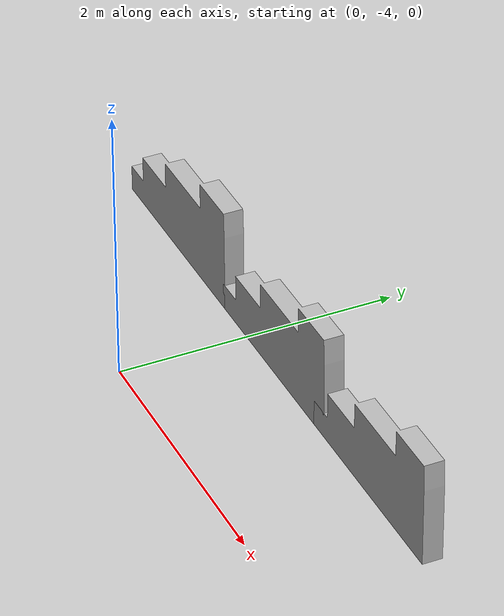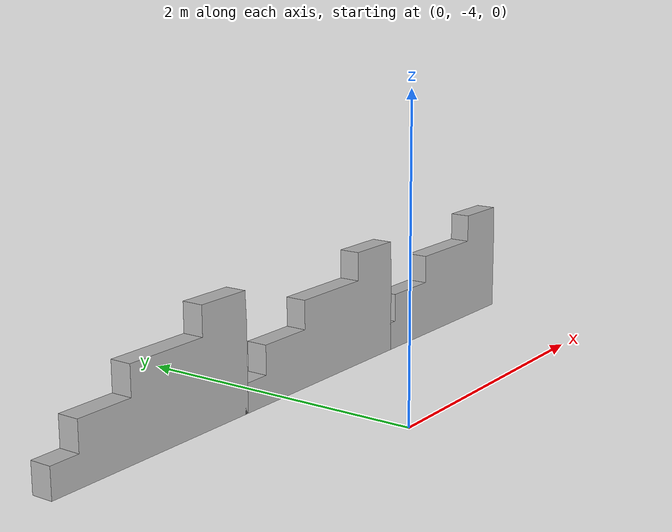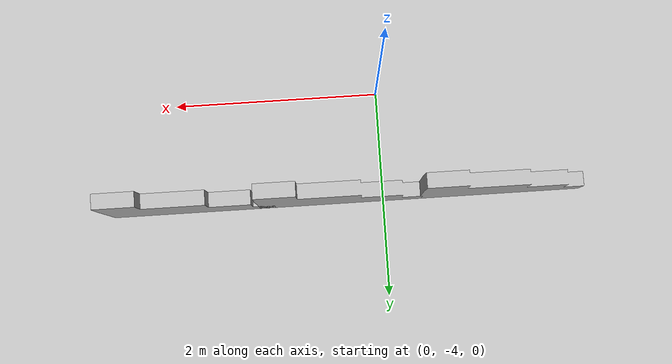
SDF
<sdf version="1.4">
 <world name="default">
  <model name="block_wall">
   <pose>-1 -3 0.30924 0 -0 0</pose>
   <static>1</static>
   <link name="blocks">
    <collision name="collision">
     <geometry><mesh><uri>model://drc_practice_block_wall/meshes/block_wall.dae</uri></mesh></geometry>
     <surface>
      <bounce><restitution_coefficient>0</restitution_coefficient><threshold>100000</threshold></bounce>
      <friction><ode><mu>100</mu><mu2>50</mu2></ode></friction>
      <contact>
       <ode><soft_cfm>0</soft_cfm><soft_erp>0.2</soft_erp><max_vel>0</max_vel><min_depth>0</min_depth></ode>
      </contact>
     </surface>
    </collision>
    <visual name="visual">
     <geometry><mesh><uri>model://drc_practice_block_wall/meshes/block_wall.dae</uri></mesh></geometry>
    </visual>
    <velocity_decay><linear>0</linear><angular>0</angular></velocity_decay>
   </link>
  </model>
  <model name="block_wall_0">
   <pose>0.563322 -3 0.30924 0 -0 0</pose>
   <static>1</static>
   <link name="blocks">
    <collision name="collision">
     <geometry><mesh><uri>model://drc_practice_block_wall/meshes/block_wall.dae</uri></mesh></geometry>
     <surface>
      <bounce><restitution_coefficient>0</restitution_coefficient><threshold>100000</threshold></bounce>
      <friction><ode><mu>100</mu><mu2>50</mu2></ode></friction>
      <contact>
       <ode><soft_cfm>0</soft_cfm><soft_erp>0.2</soft_erp><max_vel>0</max_vel><min_depth>0</min_depth></ode>
      </contact>
     </surface>
    </collision>
    <visual name="visual">
     <geometry><mesh><uri>model://drc_practice_block_wall/meshes/block_wall.dae</uri></mesh></geometry>
    </visual>
    <velocity_decay><linear>0</linear><angular>0</angular></velocity_decay>
   </link>
  </model>
  <model name="block_wall_1">
   <pose>2 -3 0.30924 0 -0 0</pose>
   <static>1</static>
   <link name="blocks">
    <collision name="collision">
     <geometry><mesh><uri>model://drc_practice_block_wall/meshes/block_wall.dae</uri></mesh></geometry>
     <surface>
      <bounce><restitution_coefficient>0</restitution_coefficient><threshold>100000</threshold></bounce>
      <friction><ode><mu>100</mu><mu2>50</mu2></ode></friction>
      <contact>
       <ode><soft_cfm>0</soft_cfm><soft_erp>0.2</soft_erp><max_vel>0</max_vel><min_depth>0</min_depth></ode>
      </contact>
     </surface>
    </collision>
    <visual name="visual">
     <geometry><mesh><uri>model://drc_practice_block_wall/meshes/block_wall.dae</uri></mesh></geometry>
    </visual>
    <velocity_decay><linear>0</linear><angular>0</angular></velocity_decay>
   </link>
  </model>
 </world>
</sdf>
